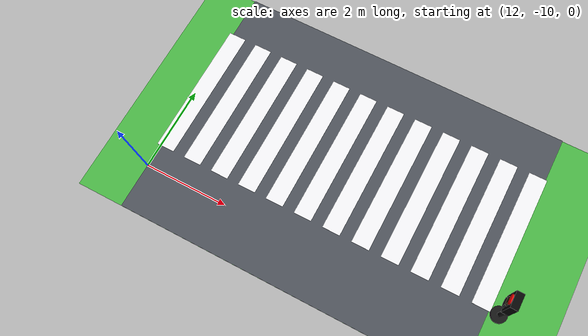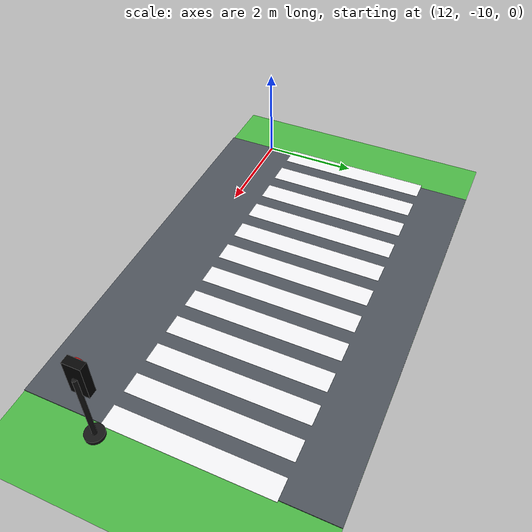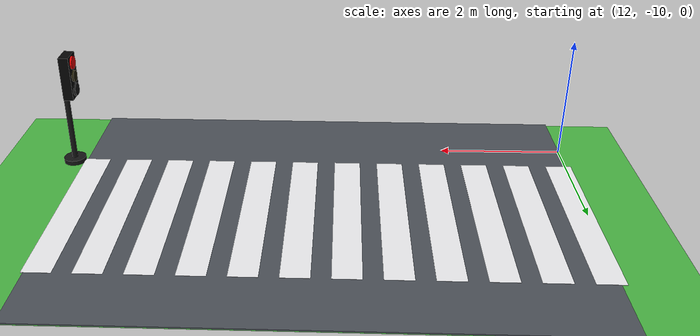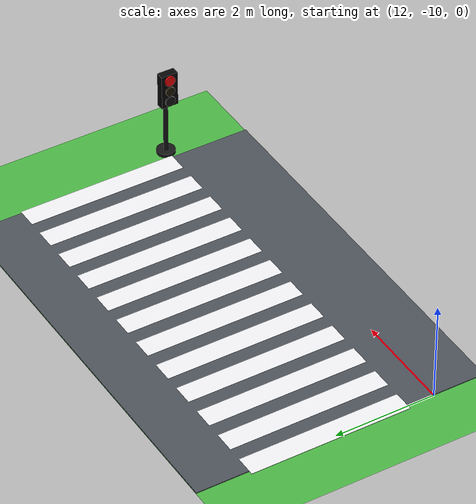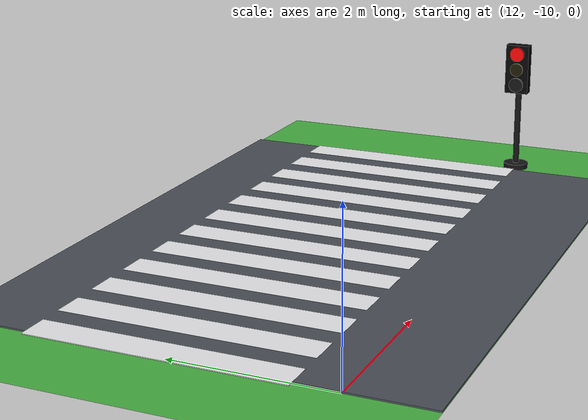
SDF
<sdf version="1.10">
 <world name="city_second">
  <model name="ground_plane">
   <static>true</static>
   <link name="link">
    <collision name="collision">
     <geometry><plane><normal>0 0 1</normal><size>300 300</size></plane></geometry>
    </collision>
    <visual name="visual">
     <geometry><plane><normal>0 0 1</normal><size>300 300</size></plane></geometry>
     <material>
      <ambient>0.280000001 0.689999998 0.25999999 1</ambient>
      <diffuse>0.280000001 0.689999998 0.25999999 1</diffuse>
      <specular>0.0299999993 0.0299999993 0.0299999993 1</specular>
     </material>
    </visual>
    <inertial>
     <mass>1</mass>
     <inertia><ixx>1</ixx><ixy>0</ixy><ixz>0</ixz><iyy>1</iyy><iyz>0</iyz><izz>1</izz></inertia>
    </inertial>
   </link>
  </model>
  <model name="road_v_2">
   <static>true</static>
   <pose>16 0 0.01 0 0 0</pose>
   <link name="link">
    <collision name="collision"><geometry><box><size>8 84 0.02</size></box></geometry></collision>
    <visual name="visual">
     <geometry><box><size>8 84 0.02</size></box></geometry>
     <material>
      <ambient>0.289999992 0.310000002 0.340000004 1</ambient>
      <diffuse>0.289999992 0.310000002 0.340000004 1</diffuse>
      <specular>0.0299999993 0.0299999993 0.0299999993 1</specular>
     </material>
    </visual>
    <inertial>
     <mass>1</mass>
     <inertia><ixx>1</ixx><ixy>0</ixy><ixz>0</ixz><iyy>1</iyy><iyz>0</iyz><izz>1</izz></inertia>
    </inertial>
   </link>
  </model>
  <model name="crosswalk_h_1_1_south_7_1">
   <static>true</static>
   <pose>15.9758 -7.8596300000000001 0.017000000000000001 0 0 0</pose>
   <link name="stripe_1">
    <collision name="collision">
     <geometry><box><size>0.41999999999999998 3.2000000000000002 0.01</size></box></geometry>
    </collision>
    <visual name="visual">
     <geometry><box><size>0.41999999999999998 3.2000000000000002 0.01</size></box></geometry>
     <material>
      <ambient>0.920000017 0.920000017 0.930000007 1</ambient>
      <diffuse>0.920000017 0.920000017 0.930000007 1</diffuse>
      <specular>0.0299999993 0.0299999993 0.0299999993 1</specular>
     </material>
    </visual>
    <pose>-3.8500000000000001 0 0 0 0 0</pose>
    <inertial>
     <mass>1</mass>
     <inertia><ixx>1</ixx><ixy>0</ixy><ixz>0</ixz><iyy>1</iyy><iyz>0</iyz><izz>1</izz></inertia>
    </inertial>
   </link>
   <link name="stripe_2">
    <collision name="collision">
     <geometry><box><size>0.41999999999999998 3.2000000000000002 0.01</size></box></geometry>
    </collision>
    <visual name="visual">
     <geometry><box><size>0.41999999999999998 3.2000000000000002 0.01</size></box></geometry>
     <material>
      <ambient>0.920000017 0.920000017 0.930000007 1</ambient>
      <diffuse>0.920000017 0.920000017 0.930000007 1</diffuse>
      <specular>0.0299999993 0.0299999993 0.0299999993 1</specular>
     </material>
    </visual>
    <pose>-3.1500000000000004 0 0 0 0 0</pose>
    <inertial>
     <mass>1</mass>
     <inertia><ixx>1</ixx><ixy>0</ixy><ixz>0</ixz><iyy>1</iyy><iyz>0</iyz><izz>1</izz></inertia>
    </inertial>
   </link>
   <link name="stripe_3">
    <collision name="collision">
     <geometry><box><size>0.41999999999999998 3.2000000000000002 0.01</size></box></geometry>
    </collision>
    <visual name="visual">
     <geometry><box><size>0.41999999999999998 3.2000000000000002 0.01</size></box></geometry>
     <material>
      <ambient>0.920000017 0.920000017 0.930000007 1</ambient>
      <diffuse>0.920000017 0.920000017 0.930000007 1</diffuse>
      <specular>0.0299999993 0.0299999993 0.0299999993 1</specular>
     </material>
    </visual>
    <pose>-2.4499999999999993 0 0 0 0 0</pose>
    <inertial>
     <mass>1</mass>
     <inertia><ixx>1</ixx><ixy>0</ixy><ixz>0</ixz><iyy>1</iyy><iyz>0</iyz><izz>1</izz></inertia>
    </inertial>
   </link>
   <link name="stripe_4">
    <collision name="collision">
     <geometry><box><size>0.41999999999999998 3.2000000000000002 0.01</size></box></geometry>
    </collision>
    <visual name="visual">
     <geometry><box><size>0.41999999999999998 3.2000000000000002 0.01</size></box></geometry>
     <material>
      <ambient>0.920000017 0.920000017 0.930000007 1</ambient>
      <diffuse>0.920000017 0.920000017 0.930000007 1</diffuse>
      <specular>0.0299999993 0.0299999993 0.0299999993 1</specular>
     </material>
    </visual>
    <pose>-1.75 0 0 0 0 0</pose>
    <inertial>
     <mass>1</mass>
     <inertia><ixx>1</ixx><ixy>0</ixy><ixz>0</ixz><iyy>1</iyy><iyz>0</iyz><izz>1</izz></inertia>
    </inertial>
   </link>
   <link name="stripe_5">
    <collision name="collision">
     <geometry><box><size>0.41999999999999998 3.2000000000000002 0.01</size></box></geometry>
    </collision>
    <visual name="visual">
     <geometry><box><size>0.41999999999999998 3.2000000000000002 0.01</size></box></geometry>
     <material>
      <ambient>0.920000017 0.920000017 0.930000007 1</ambient>
      <diffuse>0.920000017 0.920000017 0.930000007 1</diffuse>
      <specular>0.0299999993 0.0299999993 0.0299999993 1</specular>
     </material>
    </visual>
    <pose>-1.0500000000000007 0 0 0 0 0</pose>
    <inertial>
     <mass>1</mass>
     <inertia><ixx>1</ixx><ixy>0</ixy><ixz>0</ixz><iyy>1</iyy><iyz>0</iyz><izz>1</izz></inertia>
    </inertial>
   </link>
   <link name="stripe_6">
    <collision name="collision">
     <geometry><box><size>0.41999999999999998 3.2000000000000002 0.01</size></box></geometry>
    </collision>
    <visual name="visual">
     <geometry><box><size>0.41999999999999998 3.2000000000000002 0.01</size></box></geometry>
     <material>
      <ambient>0.920000017 0.920000017 0.930000007 1</ambient>
      <diffuse>0.920000017 0.920000017 0.930000007 1</diffuse>
      <specular>0.0299999993 0.0299999993 0.0299999993 1</specular>
     </material>
    </visual>
    <pose>-0.34999999999999964 0 0 0 0 0</pose>
    <inertial>
     <mass>1</mass>
     <inertia><ixx>1</ixx><ixy>0</ixy><ixz>0</ixz><iyy>1</iyy><iyz>0</iyz><izz>1</izz></inertia>
    </inertial>
   </link>
   <link name="stripe_7">
    <collision name="collision">
     <geometry><box><size>0.41999999999999998 3.2000000000000002 0.01</size></box></geometry>
    </collision>
    <visual name="visual">
     <geometry><box><size>0.41999999999999998 3.2000000000000002 0.01</size></box></geometry>
     <material>
      <ambient>0.920000017 0.920000017 0.930000007 1</ambient>
      <diffuse>0.920000017 0.920000017 0.930000007 1</diffuse>
      <specular>0.0299999993 0.0299999993 0.0299999993 1</specular>
     </material>
    </visual>
    <pose>0.35000000000000142 0 0 0 0 0</pose>
    <inertial>
     <mass>1</mass>
     <inertia><ixx>1</ixx><ixy>0</ixy><ixz>0</ixz><iyy>1</iyy><iyz>0</iyz><izz>1</izz></inertia>
    </inertial>
   </link>
   <link name="stripe_8">
    <collision name="collision">
     <geometry><box><size>0.41999999999999998 3.2000000000000002 0.01</size></box></geometry>
    </collision>
    <visual name="visual">
     <geometry><box><size>0.41999999999999998 3.2000000000000002 0.01</size></box></geometry>
     <material>
      <ambient>0.920000017 0.920000017 0.930000007 1</ambient>
      <diffuse>0.920000017 0.920000017 0.930000007 1</diffuse>
      <specular>0.0299999993 0.0299999993 0.0299999993 1</specular>
     </material>
    </visual>
    <pose>1.0500000000000007 0 0 0 0 0</pose>
    <inertial>
     <mass>1</mass>
     <inertia><ixx>1</ixx><ixy>0</ixy><ixz>0</ixz><iyy>1</iyy><iyz>0</iyz><izz>1</izz></inertia>
    </inertial>
   </link>
   <link name="stripe_9">
    <collision name="collision">
     <geometry><box><size>0.41999999999999998 3.2000000000000002 0.01</size></box></geometry>
    </collision>
    <visual name="visual">
     <geometry><box><size>0.41999999999999998 3.2000000000000002 0.01</size></box></geometry>
     <material>
      <ambient>0.920000017 0.920000017 0.930000007 1</ambient>
      <diffuse>0.920000017 0.920000017 0.930000007 1</diffuse>
      <specular>0.0299999993 0.0299999993 0.0299999993 1</specular>
     </material>
    </visual>
    <pose>1.75 0 0 0 0 0</pose>
    <inertial>
     <mass>1</mass>
     <inertia><ixx>1</ixx><ixy>0</ixy><ixz>0</ixz><iyy>1</iyy><iyz>0</iyz><izz>1</izz></inertia>
    </inertial>
   </link>
   <link name="stripe_10">
    <collision name="collision">
     <geometry><box><size>0.41999999999999998 3.2000000000000002 0.01</size></box></geometry>
    </collision>
    <visual name="visual">
     <geometry><box><size>0.41999999999999998 3.2000000000000002 0.01</size></box></geometry>
     <material>
      <ambient>0.920000017 0.920000017 0.930000007 1</ambient>
      <diffuse>0.920000017 0.920000017 0.930000007 1</diffuse>
      <specular>0.0299999993 0.0299999993 0.0299999993 1</specular>
     </material>
    </visual>
    <pose>2.4499999999999993 0 0 0 0 0</pose>
    <inertial>
     <mass>1</mass>
     <inertia><ixx>1</ixx><ixy>0</ixy><ixz>0</ixz><iyy>1</iyy><iyz>0</iyz><izz>1</izz></inertia>
    </inertial>
   </link>
   <link name="stripe_11">
    <collision name="collision">
     <geometry><box><size>0.41999999999999998 3.2000000000000002 0.01</size></box></geometry>
    </collision>
    <visual name="visual">
     <geometry><box><size>0.41999999999999998 3.2000000000000002 0.01</size></box></geometry>
     <material>
      <ambient>0.920000017 0.920000017 0.930000007 1</ambient>
      <diffuse>0.920000017 0.920000017 0.930000007 1</diffuse>
      <specular>0.0299999993 0.0299999993 0.0299999993 1</specular>
     </material>
    </visual>
    <pose>3.1499999999999986 0 0 0 0 0</pose>
    <inertial>
     <mass>1</mass>
     <inertia><ixx>1</ixx><ixy>0</ixy><ixz>0</ixz><iyy>1</iyy><iyz>0</iyz><izz>1</izz></inertia>
    </inertial>
   </link>
   <link name="stripe_12">
    <collision name="collision">
     <geometry><box><size>0.41999999999999998 3.2000000000000002 0.01</size></box></geometry>
    </collision>
    <visual name="visual">
     <geometry><box><size>0.41999999999999998 3.2000000000000002 0.01</size></box></geometry>
     <material>
      <ambient>0.920000017 0.920000017 0.930000007 1</ambient>
      <diffuse>0.920000017 0.920000017 0.930000007 1</diffuse>
      <specular>0.0299999993 0.0299999993 0.0299999993 1</specular>
     </material>
    </visual>
    <pose>3.8500000000000014 0 0 0 0 0</pose>
    <inertial>
     <mass>1</mass>
     <inertia><ixx>1</ixx><ixy>0</ixy><ixz>0</ixz><iyy>1</iyy><iyz>0</iyz><izz>1</izz></inertia>
    </inertial>
   </link>
  </model>
  <model name="simple_traffic_light_red_west_2">
   <static>true</static>
   <pose>20.209085163271727 -9.432895705974973 -2.7755575615628914e-17 0 0 1.5707999672671742</pose>
   <link name="base">
    <pose>0 0 0.040000000000000001 0 0 0</pose>
    <collision name="collision">
     <geometry>
      <cylinder><radius>0.17999999999999999</radius><length>0.080000000000000002</length></cylinder>
     </geometry>
    </collision>
    <visual name="visual">
     <geometry>
      <cylinder><radius>0.17999999999999999</radius><length>0.080000000000000002</length></cylinder>
     </geometry>
     <material>
      <ambient>0.0799999982 0.0799999982 0.0799999982 1</ambient>
      <diffuse>0.0799999982 0.0799999982 0.0799999982 1</diffuse>
      <specular>0.150000006 0.150000006 0.150000006 1</specular>
      <emissive>0 0 0 1</emissive>
     </material>
    </visual>
    <inertial>
     <mass>1</mass>
     <inertia><ixx>1</ixx><ixy>0</ixy><ixz>0</ixz><iyy>1</iyy><iyz>0</iyz><izz>1</izz></inertia>
    </inertial>
   </link>
   <link name="pole">
    <pose>-2.1316282072803006e-14 -2.8421709430404007e-14 0.80000000000000004 0 0 6.6613381477509392e-16</pose>
    <collision name="collision">
     <geometry>
      <cylinder><radius>0.044999999999999998</radius><length>1.6000000000000001</length></cylinder>
     </geometry>
    </collision>
    <visual name="visual">
     <geometry>
      <cylinder><radius>0.044999999999999998</radius><length>1.6000000000000001</length></cylinder>
     </geometry>
     <material>
      <ambient>0.0799999982 0.0799999982 0.0799999982 1</ambient>
      <diffuse>0.0799999982 0.0799999982 0.0799999982 1</diffuse>
      <specular>0.150000006 0.150000006 0.150000006 1</specular>
      <emissive>0 0 0 1</emissive>
     </material>
    </visual>
    <inertial>
     <mass>1</mass>
     <inertia><ixx>1</ixx><ixy>0</ixy><ixz>0</ixz><iyy>1</iyy><iyz>0</iyz><izz>1</izz></inertia>
    </inertial>
   </link>
   <link name="signal_box">
    <pose>-3.1974423109204508e-14 0.089999999999971436 1.5500000000000003 0 0 6.6613381477509392e-16</pose>
    <collision name="collision">
     <geometry><box><size>0.34000000000000002 0.16 0.71999999999999997</size></box></geometry>
    </collision>
    <visual name="visual">
     <geometry><box><size>0.34000000000000002 0.16 0.71999999999999997</size></box></geometry>
     <material>
      <ambient>0.0199999996 0.0199999996 0.0199999996 1</ambient>
      <diffuse>0.0199999996 0.0199999996 0.0199999996 1</diffuse>
      <specular>0.150000006 0.150000006 0.150000006 1</specular>
      <emissive>0 0 0 1</emissive>
     </material>
    </visual>
    <inertial>
     <mass>1</mass>
     <inertia><ixx>1</ixx><ixy>0</ixy><ixz>0</ixz><iyy>1</iyy><iyz>0</iyz><izz>1</izz></inertia>
    </inertial>
   </link>
   <link name="red_lens">
    <pose>-2.1316282072803006e-14 0.18099999999996896 1.7800000000000002 1.5707963267999998 2.3551386881478525e-16 -4.7887819989849136e-15</pose>
    <collision name="collision">
     <geometry><cylinder><radius>0.105</radius><length>0.035000000000000003</length></cylinder></geometry>
    </collision>
    <visual name="visual">
     <geometry><cylinder><radius>0.105</radius><length>0.035000000000000003</length></cylinder></geometry>
     <material>
      <ambient>1 0.0199999996 0.0199999996 1</ambient>
      <diffuse>1 0.0199999996 0.0199999996 1</diffuse>
      <specular>0.150000006 0.150000006 0.150000006 1</specular>
      <emissive>1 0.0199999996 0.0199999996 1</emissive>
     </material>
    </visual>
    <inertial>
     <mass>1</mass>
     <inertia><ixx>1</ixx><ixy>0</ixy><ixz>0</ixz><iyy>1</iyy><iyz>0</iyz><izz>1</izz></inertia>
    </inertial>
   </link>
   <link name="yellow_lens">
    <pose>-2.4868995751603507e-14 0.18199999999998795 1.5500000000000003 1.5707963267999998 2.3551386881478525e-16 -4.7887819989849136e-15</pose>
    <collision name="collision">
     <geometry>
      <cylinder><radius>0.095000000000000001</radius><length>0.035000000000000003</length></cylinder>
     </geometry>
    </collision>
    <visual name="visual">
     <geometry>
      <cylinder><radius>0.095000000000000001</radius><length>0.035000000000000003</length></cylinder>
     </geometry>
     <material>
      <ambient>0.119999997 0.100000001 0.0199999996 1</ambient>
      <diffuse>0.119999997 0.100000001 0.0199999996 1</diffuse>
      <specular>0.150000006 0.150000006 0.150000006 1</specular>
      <emissive>0 0 0 1</emissive>
     </material>
    </visual>
    <inertial>
     <mass>1</mass>
     <inertia><ixx>1</ixx><ixy>0</ixy><ixz>0</ixz><iyy>1</iyy><iyz>0</iyz><izz>1</izz></inertia>
    </inertial>
   </link>
   <link name="green_lens">
    <pose>-2.4868995751603507e-14 0.18299999999998562 1.3199999999999998 1.5707963267999998 2.3551386881478525e-16 -4.7887819989849136e-15</pose>
    <collision name="collision">
     <geometry><cylinder><radius>0.105</radius><length>0.035000000000000003</length></cylinder></geometry>
    </collision>
    <visual name="visual">
     <geometry><cylinder><radius>0.105</radius><length>0.035000000000000003</length></cylinder></geometry>
     <material>
      <ambient>0.0799999982 0.0799999982 0.0799999982 1</ambient>
      <diffuse>0.0799999982 0.0799999982 0.0799999982 1</diffuse>
      <specular>0.150000006 0.150000006 0.150000006 1</specular>
      <emissive>0 0 0 1</emissive>
     </material>
    </visual>
    <inertial>
     <mass>1</mass>
     <inertia><ixx>1</ixx><ixy>0</ixy><ixz>0</ixz><iyy>1</iyy><iyz>0</iyz><izz>1</izz></inertia>
    </inertial>
   </link>
  </model>
 </world>
</sdf>
